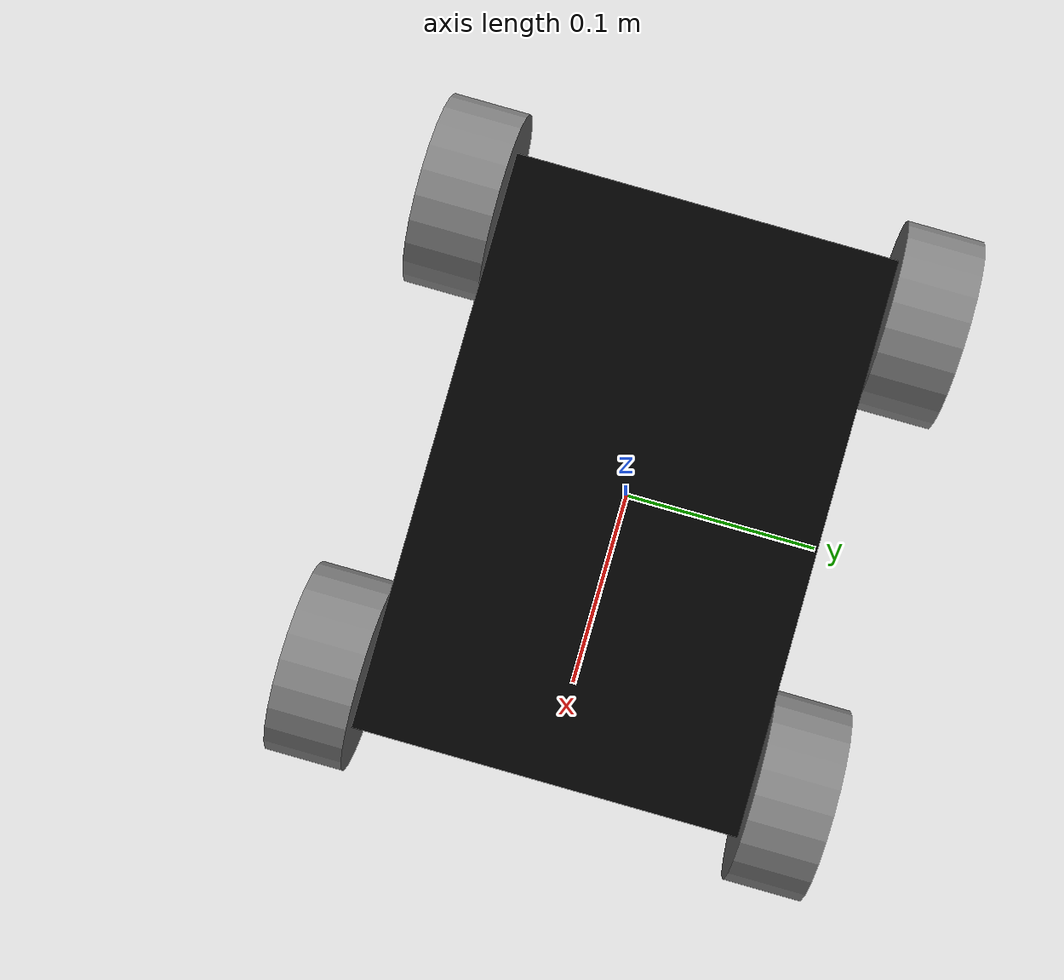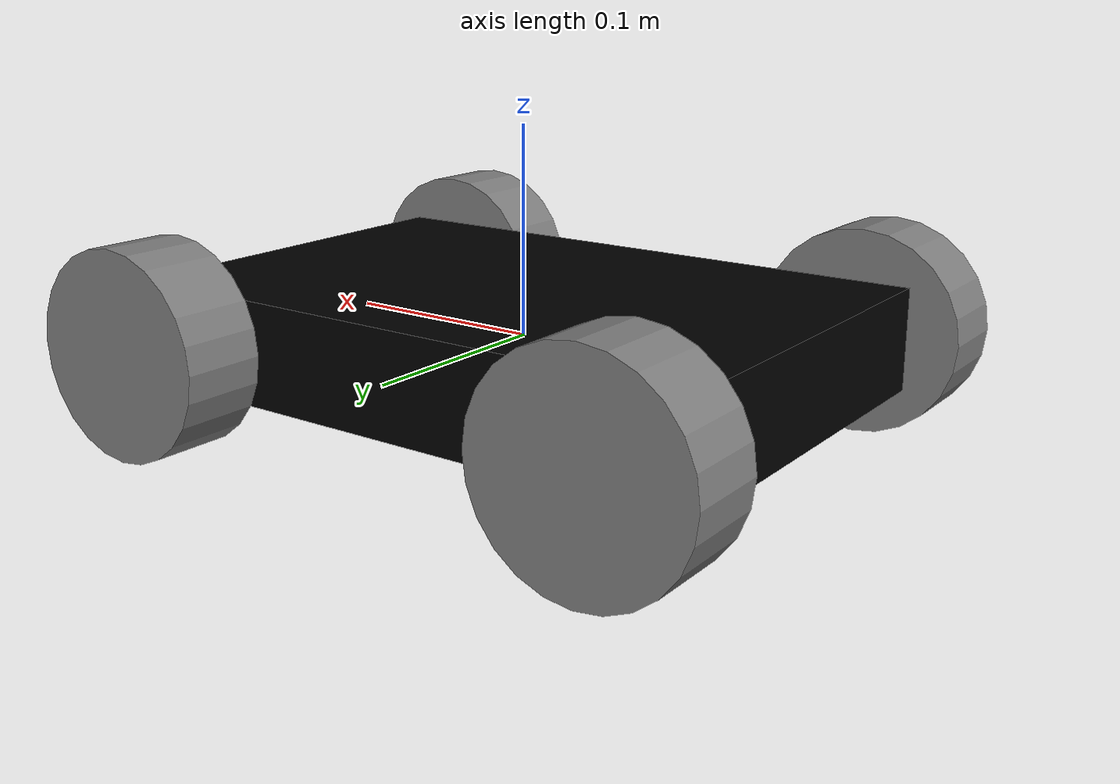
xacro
<?xml version="1.0"?>
<robot xmlns:xacro="http://www.ros.org/wiki/xacro">

    <xacro:include filename="inertial_macros.xacro"/>

    <!-- Colours for use in URDF declared below:-->
    <material name="white">
        <color rgba="1 1 1 1" />
    </material>

    <material name="black">
        <color rgba="0 0 0 1" />
    </material>

    <material name="yellow">
        <color rgba="1 1 0 1" />
    </material>

    <material name="grey">
        <color rgba="0.5 0.5 0.5 1" />
    </material>

    <material name="blue">
        <color rgba="0 0 1 1" />
    </material>

    <material name="green">
        <color rgba="0 1 0 1" />
    </material>

    <material name="red">
        <color rgba="1 0 0 1" />
    </material>

    <material name="orange">
        <color rgba="1 0.65 0 1" />
    </material>

    <!-- Links and Joints: -->
    <!-- URDF uses meters as units.-->

    <!-- Base Link: -->
    <link name="base_link">
        <origin xyz="0 0 0.035"/>
    </link>

    <!-- Chassis Link: -->
    <joint name="chassis_joint" type="fixed">
        <parent link="base_link"/>
        <child link="chassis_link"/>
        <origin xyz="-0.125 0 0.025"/>
    </joint>

    <link name="chassis_link">
        <visual>
            <origin xyz="0.125 0 -0.025"/>
            <geometry>
                <box size= "0.30 0.20 0.05"/>
            </geometry>
            <material name="black"/>
        </visual>

        <collision>
            <origin xyz="0.125 0 -0.025"/>
            <geometry>
                <box size= "0.30 0.20 0.05"/>
            </geometry>
        </collision>
        <xacro:inertial_box mass="0.5" x="0.30" y="0.20" z="0.05">
            <origin xyz="0.125 0 -0.025" rpy="0 0 0"/>
        </xacro:inertial_box>
    </link>
    <gazebo reference="chassis_link">
        <material>Gazebo/Black</material>
    </gazebo>

    <!-- Wheel Links: -->
    <!-- Left Wheel Links: -->

    <!-- REAR -->
    <joint name="left_wheel_rear_joint" type="continuous">
        <parent link="base_link"/>
        <child link="left_wheel_rear_link"/>
        <origin xyz="-0.125 0.106 0" rpy="-${pi/2} 0 0"/>
        <axis xyz="0 0 1"/>
    </joint>

    <link name="left_wheel_rear_link">
        <visual>
            <origin xyz="0 0 0.01425"/>
            <geometry>
                <cylinder radius="0.05" length="0.04"/>
            </geometry>
            <material name="grey"/>
        </visual>

        <collision>
            <origin xyz="0 0 0.01425"/>
            <geometry>
                <sphere radius="0.05" />
            </geometry>
        </collision>

        <xacro:inertial_cylinder mass="0.1" radius="0.05" length="0.04">
            <origin xyz="0 0 0.01425" rpy="0 0 0"/>
        </xacro:inertial_cylinder>
    </link>
    <gazebo reference="left_wheel_rear_link">
        <material>Gazebo/Grey</material>
    </gazebo>
    <!-- FWD -->
    <joint name="left_wheel_fwd_joint" type="continuous">
        <parent link="base_link"/>
        <child link="left_wheel_fwd_link"/>
        <origin xyz="0.125 0.106 0" rpy="-${pi/2} 0 0"/>
        <axis xyz="0 0 1"/>
    </joint>

    <link name="left_wheel_fwd_link">
        <visual>
            <origin xyz="0 0 0.01425"/>
            <geometry>
                <cylinder radius="0.05" length="0.04"/>
            </geometry>
            <material name="grey"/>
        </visual>

        <collision>
            <origin xyz="0 0 0.01425"/>
            <geometry>
                <sphere radius="0.05"/>
            </geometry>
        </collision>

        <xacro:inertial_cylinder mass="0.1" radius="0.05" length="0.04">
            <origin xyz="0 0 0.01425" rpy="0 0 0"/>
        </xacro:inertial_cylinder>
    </link>
    <gazebo reference="left_wheel_fwd_link">
        <material>Gazebo/Grey</material>
    </gazebo>
    <!-- Right Wheel Links: -->

    <!-- REAR -->
    <joint name="right_wheel_rear_joint" type="continuous">
        <parent link="base_link"/>
        <child link="right_wheel_rear_link"/>
        <origin xyz="-0.125 -0.106 0" rpy="${pi/2} 0 0"/>
        <axis xyz="0 0 -1"/>
    </joint>

    <link name="right_wheel_rear_link">
        <visual>
            <origin xyz="0 0 0.01425"/>
            <geometry>
                <cylinder radius="0.05" length="0.04"/>
            </geometry>
            <material name="grey"/>
        </visual>

        <collision>
            <origin xyz="0 0 0.01425"/>
            <geometry>
                <sphere radius="0.05"/>
            </geometry>
        </collision>

        <xacro:inertial_cylinder mass="0.1" radius="0.05" length="0.04">
            <origin xyz="0 0 0.01425" rpy="0 0 0"/>
        </xacro:inertial_cylinder>
    </link>
    <gazebo reference="right_wheel_rear_link">
        <material>Gazebo/Grey</material>
    </gazebo>

    <!-- FWD -->
    <joint name="right_wheel_fwd_joint" type="continuous">
        <parent link="base_link"/>
        <child link="right_wheel_fwd_link"/>
        <origin xyz="0.125 -0.106 0" rpy="${pi/2} 0 0"/>
        <axis xyz="0 0 -1"/>
    </joint>

    <link name="right_wheel_fwd_link">
        <visual>
            <origin xyz="0 0 0.01425"/>
            <geometry>
                <cylinder radius="0.05" length="0.04"/>
            </geometry>
            <material name="grey"/>
        </visual>

        <collision>
            <origin xyz="0 0 0.01425"/>
            <geometry>
                <sphere radius="0.05"/>
            </geometry>
        </collision>

        <xacro:inertial_cylinder mass="0.1" radius="0.05" length="0.04">
            <origin xyz="0 0 0.01425" rpy="0 0 0"/>
        </xacro:inertial_cylinder>
    </link>
    <gazebo reference="right_wheel_fwd_link">
        <material>Gazebo/Grey</material>
    </gazebo>
</robot>
